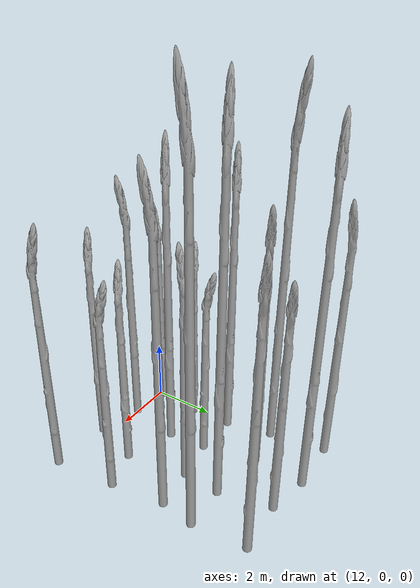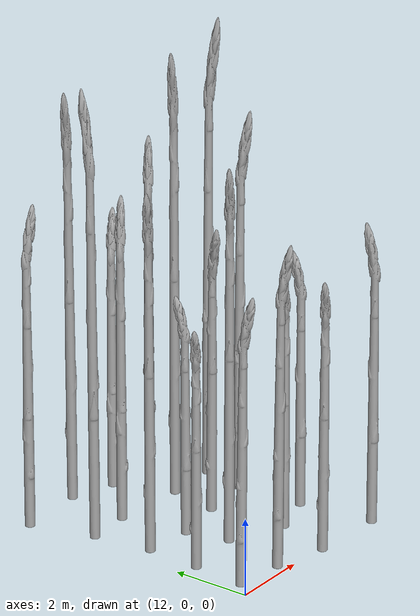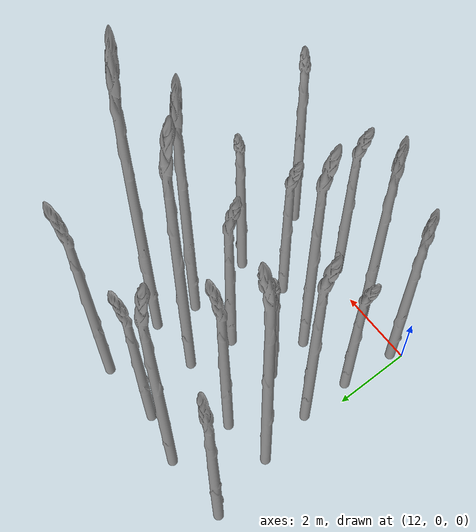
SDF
<sdf version="1.6">
 <world name="default">
  <model name="asparagus_32">
   <pose>12.2089 0.181974 0 0 -0 -1.14606</pose>
   <static>1</static>
   <link name="asparagus_32">
    <visual name="visual">
     <geometry>
      <mesh><uri>model://Asparagus/meshes/asparagus.obj</uri><scale>0.3 0.3 0.359142</scale></mesh>
     </geometry>
    </visual>
    <collision name="collision">
     <geometry>
      <mesh><uri>model://Asparagus/meshes/asparagus.obj</uri><scale>0.3 0.3 0.359142</scale></mesh>
     </geometry>
    </collision>
   </link>
  </model>
  <model name="asparagus_35">
   <pose>12.2317 1.62877 0 0 -0 -2.67471</pose>
   <static>1</static>
   <link name="asparagus_35">
    <visual name="visual">
     <geometry>
      <mesh><uri>model://Asparagus/meshes/asparagus.obj</uri><scale>0.3 0.3 0.303656</scale></mesh>
     </geometry>
    </visual>
    <collision name="collision">
     <geometry>
      <mesh><uri>model://Asparagus/meshes/asparagus.obj</uri><scale>0.3 0.3 0.303656</scale></mesh>
     </geometry>
    </collision>
   </link>
  </model>
  <model name="asparagus_38">
   <pose>12.1933 2.97313 0 0 -0 -2.66477</pose>
   <static>1</static>
   <link name="asparagus_38">
    <visual name="visual">
     <geometry>
      <mesh><uri>model://Asparagus/meshes/asparagus.obj</uri><scale>0.3 0.3 0.452807</scale></mesh>
     </geometry>
    </visual>
    <collision name="collision">
     <geometry>
      <mesh><uri>model://Asparagus/meshes/asparagus.obj</uri><scale>0.3 0.3 0.452807</scale></mesh>
     </geometry>
    </collision>
   </link>
  </model>
  <model name="asparagus_41">
   <pose>11.9973 4.55182 0 0 -0 1.61893</pose>
   <static>1</static>
   <link name="asparagus_41">
    <visual name="visual">
     <geometry>
      <mesh><uri>model://Asparagus/meshes/asparagus.obj</uri><scale>0.3 0.3 0.556947</scale></mesh>
     </geometry>
    </visual>
    <collision name="collision">
     <geometry>
      <mesh><uri>model://Asparagus/meshes/asparagus.obj</uri><scale>0.3 0.3 0.556947</scale></mesh>
     </geometry>
    </collision>
   </link>
  </model>
  <model name="asparagus_44">
   <pose>11.7162 6.16978 0 0 -0 -0.231285</pose>
   <static>1</static>
   <link name="asparagus_44">
    <visual name="visual">
     <geometry>
      <mesh><uri>model://Asparagus/meshes/asparagus.obj</uri><scale>0.3 0.3 0.405773</scale></mesh>
     </geometry>
    </visual>
    <collision name="collision">
     <geometry>
      <mesh><uri>model://Asparagus/meshes/asparagus.obj</uri><scale>0.3 0.3 0.405773</scale></mesh>
     </geometry>
    </collision>
   </link>
  </model>
  <model name="asparagus_92">
   <pose>13.4641 0.014751 0 0 -0 -1.1017</pose>
   <static>1</static>
   <link name="asparagus_92">
    <visual name="visual">
     <geometry>
      <mesh><uri>model://Asparagus/meshes/asparagus.obj</uri><scale>0.3 0.3 0.402919</scale></mesh>
     </geometry>
    </visual>
    <collision name="collision">
     <geometry>
      <mesh><uri>model://Asparagus/meshes/asparagus.obj</uri><scale>0.3 0.3 0.402919</scale></mesh>
     </geometry>
    </collision>
   </link>
  </model>
  <model name="asparagus_95">
   <pose>13.7236 1.7448 0 0 -0 -2.58751</pose>
   <static>1</static>
   <link name="asparagus_95">
    <visual name="visual">
     <geometry>
      <mesh><uri>model://Asparagus/meshes/asparagus.obj</uri><scale>0.3 0.3 0.47282</scale></mesh>
     </geometry>
    </visual>
    <collision name="collision">
     <geometry>
      <mesh><uri>model://Asparagus/meshes/asparagus.obj</uri><scale>0.3 0.3 0.47282</scale></mesh>
     </geometry>
    </collision>
   </link>
  </model>
  <model name="asparagus_98">
   <pose>13.5981 3.02092 0 0 -0 2.01573</pose>
   <static>1</static>
   <link name="asparagus_98">
    <visual name="visual">
     <geometry>
      <mesh><uri>model://Asparagus/meshes/asparagus.obj</uri><scale>0.3 0.3 0.302709</scale></mesh>
     </geometry>
    </visual>
    <collision name="collision">
     <geometry>
      <mesh><uri>model://Asparagus/meshes/asparagus.obj</uri><scale>0.3 0.3 0.302709</scale></mesh>
     </geometry>
    </collision>
   </link>
  </model>
  <model name="asparagus_101">
   <pose>13.3349 4.65741 0 0 -0 0.524404</pose>
   <static>1</static>
   <link name="asparagus_101">
    <visual name="visual">
     <geometry>
      <mesh><uri>model://Asparagus/meshes/asparagus.obj</uri><scale>0.3 0.3 0.408126</scale></mesh>
     </geometry>
    </visual>
    <collision name="collision">
     <geometry>
      <mesh><uri>model://Asparagus/meshes/asparagus.obj</uri><scale>0.3 0.3 0.408126</scale></mesh>
     </geometry>
    </collision>
   </link>
  </model>
  <model name="asparagus_104">
   <pose>13.302 6.23094 0 0 -0 -2.74645</pose>
   <static>1</static>
   <link name="asparagus_104">
    <visual name="visual">
     <geometry>
      <mesh><uri>model://Asparagus/meshes/asparagus.obj</uri><scale>0.3 0.3 0.520723</scale></mesh>
     </geometry>
    </visual>
    <collision name="collision">
     <geometry>
      <mesh><uri>model://Asparagus/meshes/asparagus.obj</uri><scale>0.3 0.3 0.520723</scale></mesh>
     </geometry>
    </collision>
   </link>
  </model>
  <model name="asparagus_152">
   <pose>14.7536 -0.273441 0 0 -0 -2.65004</pose>
   <static>1</static>
   <link name="asparagus_152">
    <visual name="visual">
     <geometry>
      <mesh><uri>model://Asparagus/meshes/asparagus.obj</uri><scale>0.3 0.3 0.344194</scale></mesh>
     </geometry>
    </visual>
    <collision name="collision">
     <geometry>
      <mesh><uri>model://Asparagus/meshes/asparagus.obj</uri><scale>0.3 0.3 0.344194</scale></mesh>
     </geometry>
    </collision>
   </link>
  </model>
  <model name="asparagus_155">
   <pose>15.2264 1.2044 0 0 -0 -2.70587</pose>
   <static>1</static>
   <link name="asparagus_155">
    <visual name="visual">
     <geometry>
      <mesh><uri>model://Asparagus/meshes/asparagus.obj</uri><scale>0.3 0.3 0.324102</scale></mesh>
     </geometry>
    </visual>
    <collision name="collision">
     <geometry>
      <mesh><uri>model://Asparagus/meshes/asparagus.obj</uri><scale>0.3 0.3 0.324102</scale></mesh>
     </geometry>
    </collision>
   </link>
  </model>
  <model name="asparagus_158">
   <pose>14.9379 3.10747 0 0 -0 -2.00257</pose>
   <static>1</static>
   <link name="asparagus_158">
    <visual name="visual">
     <geometry>
      <mesh><uri>model://Asparagus/meshes/asparagus.obj</uri><scale>0.3 0.3 0.365333</scale></mesh>
     </geometry>
    </visual>
    <collision name="collision">
     <geometry>
      <mesh><uri>model://Asparagus/meshes/asparagus.obj</uri><scale>0.3 0.3 0.365333</scale></mesh>
     </geometry>
    </collision>
   </link>
  </model>
  <model name="asparagus_161">
   <pose>15.0235 4.36205 0 0 -0 -2.77277</pose>
   <static>1</static>
   <link name="asparagus_161">
    <visual name="visual">
     <geometry>
      <mesh><uri>model://Asparagus/meshes/asparagus.obj</uri><scale>0.3 0.3 0.563512</scale></mesh>
     </geometry>
    </visual>
    <collision name="collision">
     <geometry>
      <mesh><uri>model://Asparagus/meshes/asparagus.obj</uri><scale>0.3 0.3 0.563512</scale></mesh>
     </geometry>
    </collision>
   </link>
  </model>
  <model name="asparagus_164">
   <pose>14.7119 6.00155 0 0 -0 0.469372</pose>
   <static>1</static>
   <link name="asparagus_164">
    <visual name="visual">
     <geometry>
      <mesh><uri>model://Asparagus/meshes/asparagus.obj</uri><scale>0.3 0.3 0.357236</scale></mesh>
     </geometry>
    </visual>
    <collision name="collision">
     <geometry>
      <mesh><uri>model://Asparagus/meshes/asparagus.obj</uri><scale>0.3 0.3 0.357236</scale></mesh>
     </geometry>
    </collision>
   </link>
  </model>
  <model name="asparagus_212">
   <pose>16.7125 -0.285437 0 0 -0 2.21823</pose>
   <static>1</static>
   <link name="asparagus_212">
    <visual name="visual">
     <geometry>
      <mesh><uri>model://Asparagus/meshes/asparagus.obj</uri><scale>0.3 0.3 0.382328</scale></mesh>
     </geometry>
    </visual>
    <collision name="collision">
     <geometry>
      <mesh><uri>model://Asparagus/meshes/asparagus.obj</uri><scale>0.3 0.3 0.382328</scale></mesh>
     </geometry>
    </collision>
   </link>
  </model>
  <model name="asparagus_215">
   <pose>16.4802 1.67897 0 0 -0 2.27121</pose>
   <static>1</static>
   <link name="asparagus_215">
    <visual name="visual">
     <geometry>
      <mesh><uri>model://Asparagus/meshes/asparagus.obj</uri><scale>0.3 0.3 0.329466</scale></mesh>
     </geometry>
    </visual>
    <collision name="collision">
     <geometry>
      <mesh><uri>model://Asparagus/meshes/asparagus.obj</uri><scale>0.3 0.3 0.329466</scale></mesh>
     </geometry>
    </collision>
   </link>
  </model>
  <model name="asparagus_218">
   <pose>16.3411 3.2594 0 0 -0 -0.991565</pose>
   <static>1</static>
   <link name="asparagus_218">
    <visual name="visual">
     <geometry>
      <mesh><uri>model://Asparagus/meshes/asparagus.obj</uri><scale>0.3 0.3 0.484435</scale></mesh>
     </geometry>
    </visual>
    <collision name="collision">
     <geometry>
      <mesh><uri>model://Asparagus/meshes/asparagus.obj</uri><scale>0.3 0.3 0.484435</scale></mesh>
     </geometry>
    </collision>
   </link>
  </model>
  <model name="asparagus_221">
   <pose>16.514 4.33846 0 0 -0 -1.07956</pose>
   <static>1</static>
   <link name="asparagus_221">
    <visual name="visual">
     <geometry>
      <mesh><uri>model://Asparagus/meshes/asparagus.obj</uri><scale>0.3 0.3 0.584215</scale></mesh>
     </geometry>
    </visual>
    <collision name="collision">
     <geometry>
      <mesh><uri>model://Asparagus/meshes/asparagus.obj</uri><scale>0.3 0.3 0.584215</scale></mesh>
     </geometry>
    </collision>
   </link>
  </model>
  <model name="asparagus_224">
   <pose>16.3359 6.10613 0 0 -0 0.606935</pose>
   <static>1</static>
   <link name="asparagus_224">
    <visual name="visual">
     <geometry>
      <mesh><uri>model://Asparagus/meshes/asparagus.obj</uri><scale>0.3 0.3 0.42134</scale></mesh>
     </geometry>
    </visual>
    <collision name="collision">
     <geometry>
      <mesh><uri>model://Asparagus/meshes/asparagus.obj</uri><scale>0.3 0.3 0.42134</scale></mesh>
     </geometry>
    </collision>
   </link>
  </model>
 </world>
</sdf>
